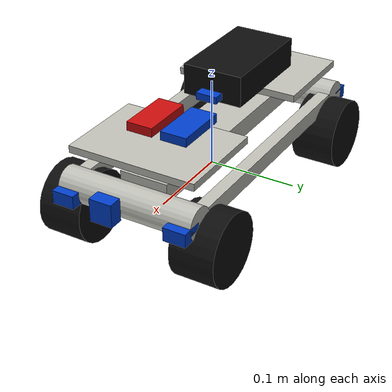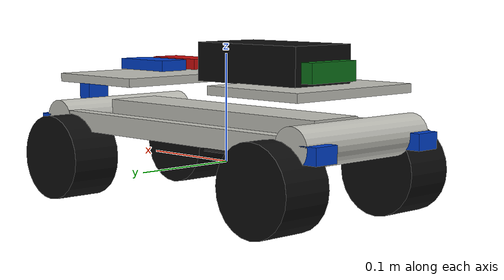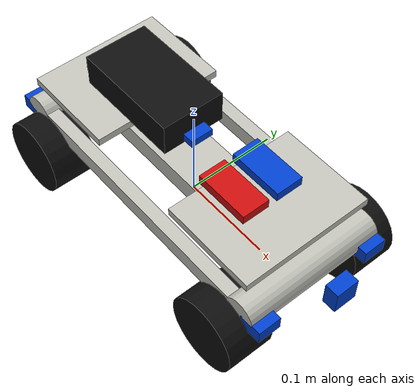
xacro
<?xml version="1.0"?>
<robot name="solarbot" xmlns:xacro="http://www.ros.org/wiki/xacro">

  <!-- ── 1. Common ─────────────────────────────────────────────── -->
  <xacro:include filename="$(find solarbot_description)/urdf/common/properties.xacro"/>
  <xacro:include filename="$(find solarbot_description)/urdf/common/materials.xacro"/>

  <!-- ── 2. Base ───────────────────────────────────────────────── -->
  <xacro:include filename="$(find solarbot_description)/urdf/base/chassis.xacro"/>
  <xacro:include filename="$(find solarbot_description)/urdf/base/wheels.xacro"/>

  <!-- ── 3. Sensors ────────────────────────────────────────────── -->
  <xacro:include filename="$(find solarbot_description)/urdf/sensors/sensors.xacro"/>

  <!-- ── 4. Electronics ────────────────────────────────────────── -->
  <xacro:include filename="$(find solarbot_description)/urdf/electronics/electronics.xacro"/>

  <!-- ── 5. ros2_control ───────────────────────────────────────── -->
  <xacro:include filename="$(find solarbot_description)/urdf/control/ros2_control.xacro"/>

  <!-- ── 6. Gazebo plugins + sensors ──────────────────────────── -->
  <xacro:include filename="$(find solarbot_description)/urdf/gazebo/gazebo.xacro"/>

</robot>

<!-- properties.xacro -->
<robot xmlns:xacro="http://www.ros.org/wiki/xacro">

  <!-- ── Chassis body ──────────────────────────────────────── -->
  <xacro:property name="chassis_rail_length"  value="0.270"/>
  <xacro:property name="chassis_rail_width"   value="0.055"/>
  <xacro:property name="chassis_rail_height"  value="0.022"/>

  <xacro:property name="plate_length"         value="0.105"/>
  <xacro:property name="plate_width"          value="0.145"/>
  <xacro:property name="plate_thickness"      value="0.008"/>
  <xacro:property name="plate_z"              value="0.034"/>

  <xacro:property name="side_rail_length"     value="0.295"/>
  <xacro:property name="side_rail_width"      value="0.014"/>
  <xacro:property name="side_rail_height"     value="0.018"/>
  <xacro:property name="side_rail_z"          value="-0.006"/>
  <xacro:property name="side_rail_y"          value="0.070"/>

  <!-- ── Track geometry ───────────────────────────────────── -->
  <xacro:property name="track_pod_length"     value="0.115"/>
  <xacro:property name="track_pod_width"      value="0.050"/>
  <xacro:property name="track_pod_height"     value="0.052"/>
  <xacro:property name="track_full_length"    value="0.393"/>
  <xacro:property name="track_front_x"        value="0.135"/>
  <xacro:property name="track_rear_x"         value="-0.135"/>
  <xacro:property name="track_y_offset"       value="0.078"/>
  <xacro:property name="track_z_offset"       value="-0.016"/>

  <!-- ── Virtual wheel (control) ──────────────────────────── -->
  <xacro:property name="wheel_radius"         value="0.040"/>
  <xacro:property name="wheel_width"          value="0.050"/>
  <xacro:property name="wheel_y_offset"       value="0.078"/>
  <xacro:property name="wheel_mass"           value="0.01"/>

  <!-- ── Motors ───────────────────────────────────────────── -->
  <xacro:property name="motor_radius"         value="0.018"/>
  <xacro:property name="motor_shaft_length"   value="0.155"/>
  <xacro:property name="motor_front_x"        value="0.155"/>
  <xacro:property name="motor_z"              value="-0.006"/>

  <!-- ── Base heights ─────────────────────────────────────── -->
  <xacro:property name="base_z_above_ground"  value="${wheel_radius}"/>

  <!-- ── Masses ────────────────────────────────────────────── -->
  <xacro:property name="chassis_mass"         value="2.20"/>
  <xacro:property name="track_pod_mass"       value="0.45"/>
  <xacro:property name="virtual_wheel_mass"   value="0.001"/>

  <!-- ELECTRONICS POSITIONS                                 -->
  <!-- All xyz relative to base_link origin.                 -->
  <!-- Adjust once physical mounting is measured.            -->

  <!-- Battery pack (LiFePO4, centre-rear for balance) -->
  <xacro:property name="battery_x"            value="-0.060"/>
  <xacro:property name="battery_y"            value="0.000"/>
  <xacro:property name="battery_z"            value="0.055"/>

  <!-- Raspberry Pi 5 (rear top plate) -->
  <xacro:property name="rpi_x"                value="-0.090"/>
  <xacro:property name="rpi_y"                value="0.000"/>
  <xacro:property name="rpi_z"                value="0.050"/>

  <!-- ESP32 motor controller (front area, near motor driver) -->
  <xacro:property name="esp32_x"              value="0.080"/>
  <xacro:property name="esp32_y"              value="0.020"/>
  <xacro:property name="esp32_z"              value="0.048"/>

  <!-- STM32 safety controller (front top plate) -->
  <xacro:property name="stm32_x"              value="0.080"/>
  <xacro:property name="stm32_y"              value="-0.020"/>
  <xacro:property name="stm32_z"              value="0.048"/>

  <!-- SENSOR POSITIONS                                      -->
  <!-- All xyz relative to base_link origin.                 -->

  <!-- IMU (GY-91 / MPU9250 — centred on chassis) -->
  <xacro:property name="imu_x"                value="0.000"/>
  <xacro:property name="imu_y"                value="0.000"/>
  <xacro:property name="imu_z"                value="0.045"/>

  <!-- Downward camera (OV9732 — centre of chassis, looking down at panel) -->
  <xacro:property name="camera_x"             value="0.000"/>
  <xacro:property name="camera_y"             value="0.000"/>
  <xacro:property name="camera_z"             value="-0.020"/>

  <!-- Front obstacle ToF (forward-facing, above front edge) -->
  <xacro:property name="front_tof_x"          value="0.200"/>
  <xacro:property name="front_tof_y"          value="0.000"/>
  <xacro:property name="front_tof_z"          value="0.010"/>

  <xacro:property name="front_left_tof_x"     value="0.170"/>
  <xacro:property name="front_left_tof_y"     value="0.065"/>
  <xacro:property name="front_left_tof_z"     value="-0.010"/>

  <xacro:property name="front_right_tof_x"    value="0.170"/>
  <xacro:property name="front_right_tof_y"    value="-0.065"/>
  <xacro:property name="front_right_tof_z"    value="-0.010"/>

  <xacro:property name="rear_left_tof_x"      value="-0.170"/>
  <xacro:property name="rear_left_tof_y"      value="0.065"/>
  <xacro:property name="rear_left_tof_z"      value="-0.010"/>

  <xacro:property name="rear_right_tof_x"     value="-0.170"/>
  <xacro:property name="rear_right_tof_y"     value="-0.065"/>
  <xacro:property name="rear_right_tof_z"     value="-0.010"/>

</robot>

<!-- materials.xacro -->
<robot xmlns:xacro="http://www.ros.org/wiki/xacro">

  <!--
    materials.xacro
    All colour definitions. Reference by name everywhere else.
  -->

  <material name="silver">
    <color rgba="0.75 0.75 0.72 1.0"/>
  </material>

  <material name="black">
    <color rgba="0.05 0.05 0.05 1.0"/>
  </material>

  <material name="dark_gray">
    <color rgba="0.15 0.15 0.15 1.0"/>
  </material>

  <!-- Sensor boards (IMU, ToF) -->
  <material name="blue">
    <color rgba="0.0 0.25 0.8 1.0"/>
  </material>

  <!-- Camera module -->
  <material name="camera_gray">
    <color rgba="0.20 0.20 0.20 1.0"/>
  </material>

  <!-- Raspberry Pi board -->
  <material name="green">
    <color rgba="0.05 0.45 0.10 1.0"/>
  </material>

  <!-- STM32 safety controller -->
  <material name="red">
    <color rgba="0.80 0.05 0.05 1.0"/>
  </material>

</robot>

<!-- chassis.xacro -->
<robot xmlns:xacro="http://www.ros.org/wiki/xacro">

  <xacro:macro name="box_inertia" params="m lx ly lz">
    <inertia
      ixx="${m*(ly*ly + lz*lz)/12.0}" ixy="0" ixz="0"
      iyy="${m*(lx*lx + lz*lz)/12.0}" iyz="0"
      izz="${m*(lx*lx + ly*ly)/12.0}"/>
  </xacro:macro>

  <!-- base_footprint — ground-plane projection, used by Nav2 -->
  <link name="base_footprint"/>

  <joint name="base_footprint_joint" type="fixed">
    <parent link="base_footprint"/>
    <child  link="base_link"/>
    <origin xyz="0 0 ${base_z_above_ground}" rpy="0 0 0"/>
  </joint>

  <!-- base_link — rigid chassis body -->
  <link name="base_link">

    <inertial>
      <origin xyz="0 0 0" rpy="0 0 0"/>
      <mass value="${chassis_mass}"/>
      <xacro:box_inertia
        m="${chassis_mass}"
        lx="${track_full_length}"
        ly="${motor_shaft_length}"
        lz="0.084"/>
    </inertial>

    <!-- Central spine rail -->
    <visual>
      <origin xyz="0 0 0" rpy="0 0 0"/>
      <geometry>
        <box size="${chassis_rail_length} ${chassis_rail_width} ${chassis_rail_height}"/>
      </geometry>
      <material name="silver"/>
    </visual>
    <collision>
      <origin xyz="0 0 0" rpy="0 0 0"/>
      <geometry>
        <box size="${chassis_rail_length} ${chassis_rail_width} ${chassis_rail_height}"/>
      </geometry>
    </collision>

    <!-- Front top plate -->
    <visual>
      <origin xyz="${plate_length} 0 ${plate_z}" rpy="0 0 0"/>
      <geometry>
        <box size="${plate_length} ${plate_width} ${plate_thickness}"/>
      </geometry>
      <material name="silver"/>
    </visual>
    <collision>
      <origin xyz="${plate_length} 0 ${plate_z}" rpy="0 0 0"/>
      <geometry>
        <box size="${plate_length} ${plate_width} ${plate_thickness}"/>
      </geometry>
    </collision>

    <!-- Rear top plate -->
    <visual>
      <origin xyz="${-plate_length} 0 ${plate_z}" rpy="0 0 0"/>
      <geometry>
        <box size="${plate_length} ${plate_width} ${plate_thickness}"/>
      </geometry>
      <material name="silver"/>
    </visual>
    <collision>
      <origin xyz="${-plate_length} 0 ${plate_z}" rpy="0 0 0"/>
      <geometry>
        <box size="${plate_length} ${plate_width} ${plate_thickness}"/>
      </geometry>
    </collision>

    <!-- Left side rail (visual only) -->
    <visual>
      <origin xyz="0 ${side_rail_y} ${side_rail_z}" rpy="0 0 0"/>
      <geometry>
        <box size="${side_rail_length} ${side_rail_width} ${side_rail_height}"/>
      </geometry>
      <material name="silver"/>
    </visual>

    <!-- Right side rail (visual only) -->
    <visual>
      <origin xyz="0 ${-side_rail_y} ${side_rail_z}" rpy="0 0 0"/>
      <geometry>
        <box size="${side_rail_length} ${side_rail_width} ${side_rail_height}"/>
      </geometry>
      <material name="silver"/>
    </visual>

    <!-- Front motor shaft (visual only) -->
    <visual>
      <origin xyz="${motor_front_x} 0 ${motor_z}" rpy="1.5708 0 0"/>
      <geometry>
        <cylinder radius="${motor_radius}" length="${motor_shaft_length}"/>
      </geometry>
      <material name="silver"/>
    </visual>

    <!-- Rear motor shaft (visual only) -->
    <visual>
      <origin xyz="${-motor_front_x} 0 ${motor_z}" rpy="1.5708 0 0"/>
      <geometry>
        <cylinder radius="${motor_radius}" length="${motor_shaft_length}"/>
      </geometry>
      <material name="silver"/>
    </visual>

  </link>

</robot>

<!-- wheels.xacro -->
<robot xmlns:xacro="http://www.ros.org/wiki/xacro">

<xacro:macro name="cylinder_inertia" params="m r h">
    <inertia
        ixx="${m*(3.0*r*r + h*h)/12.0}" ixy="0" ixz="0"
        iyy="${m*(3.0*r*r + h*h)/12.0}" iyz="0"
        izz="${m*r*r/2.0}"/>
</xacro:macro>

<!-- Wheel macro                                                -->
<xacro:macro name="wheel" params="name x y">

    <link name="${name}_wheel_link">

        <inertial>
            <origin xyz="0 0 0" rpy="0 0 0"/>
            <mass value="${wheel_mass}"/>
            <xacro:cylinder_inertia
                m="${wheel_mass}"
                r="${wheel_radius}"
                h="${wheel_width}"/>
        </inertial>

        <!-- Visual: rubber tyre cylinder -->
        <visual>
            <origin xyz="0 0 0" rpy="1.5708 0 0"/>
            <geometry>
                <cylinder radius="${wheel_radius}" length="${wheel_width}"/>
            </geometry>
            <material name="black"/>
        </visual>

        <!-- Collision: same cylinder geometry -->
        <collision>
            <origin xyz="0 0 0" rpy="1.5708 0 0"/>
            <geometry>
                <cylinder radius="${wheel_radius}" length="${wheel_width}"/>
            </geometry>
        </collision>

    </link>

    <joint name="${name}_wheel_joint" type="continuous">
        <parent link="base_link"/>
        <child  link="${name}_wheel_link"/>
        <origin xyz="${x} ${y} ${-wheel_radius}" rpy="0 0 0"/>
        <axis xyz="0 1 0"/>
        <dynamics damping="0.01" friction="0.1"/>
    </joint>

</xacro:macro>

<!-- Instantiate all four wheels                                -->

<xacro:wheel name="front_left"  x="0.135"  y="${wheel_y_offset}"/>
<xacro:wheel name="rear_left"   x="-0.135" y="${wheel_y_offset}"/>
<xacro:wheel name="front_right" x="0.135"  y="${-wheel_y_offset}"/>
<xacro:wheel name="rear_right"  x="-0.135" y="${-wheel_y_offset}"/>

</robot>

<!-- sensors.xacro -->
<robot xmlns:xacro="http://www.ros.org/wiki/xacro">

  <!-- ── ToF sensor macro ──────────────────────────────────── -->
  <xacro:macro name="tof_sensor" params="name x y z rpy">

    <link name="${name}_link">
      <visual>
        <geometry>
          <box size="0.025 0.025 0.015"/>
        </geometry>
        <material name="blue"/>
      </visual>
    </link>

    <joint name="${name}_joint" type="fixed">
      <parent link="base_link"/>
      <child  link="${name}_link"/>
      <origin xyz="${x} ${y} ${z}" rpy="${rpy}"/>
    </joint>

  </xacro:macro>

  <!-- ── IMU ───────────────────────────────────────────────── -->
  <link name="imu_link">
    <visual>
      <geometry>
        <box size="0.025 0.025 0.008"/>
      </geometry>
      <material name="blue"/>
    </visual>
  </link>

  <joint name="imu_joint" type="fixed">
    <parent link="base_link"/>
    <child  link="imu_link"/>
    <origin xyz="${imu_x} ${imu_y} ${imu_z}" rpy="0 0 0"/>
  </joint>

  <!-- ── Downward camera ───────────────────────────────────── -->
  <link name="downward_camera_link">
    <visual>
      <geometry>
        <box size="0.030 0.030 0.020"/>
      </geometry>
      <material name="dark_gray"/>
    </visual>
  </link>

  <joint name="downward_camera_joint" type="fixed">
    <parent link="base_link"/>
    <child  link="downward_camera_link"/>
    <origin xyz="${camera_x} ${camera_y} ${camera_z}" rpy="0 0 0"/>
  </joint>

  <link name="downward_camera_optical_frame"/>

  <joint name="downward_camera_optical_joint" type="fixed">
    <parent link="downward_camera_link"/>
    <child  link="downward_camera_optical_frame"/>
    <origin xyz="0 0 -0.020" rpy="-1.5708 0 -1.5708"/>
  </joint>

  <!-- ── Front obstacle ToF (forward-facing) ───────────────── -->
  <!--
    rpy="0 1.5708 0" tilts the sensor to face forward (+X direction).
    Detects obstacles ahead of the robot on the panel surface.
  -->
  <xacro:tof_sensor
    name="front_tof"
    x="${front_tof_x}"
    y="${front_tof_y}"
    z="${front_tof_z}"
    rpy="0 1.5708 0"/>

  <!-- ── Corner cliff ToF sensors (downward-facing) ────────── -->
  <xacro:tof_sensor
    name="front_left_tof"
    x="${front_left_tof_x}"
    y="${front_left_tof_y}"
    z="${front_left_tof_z}"
    rpy="0 0 0"/>

  <xacro:tof_sensor
    name="front_right_tof"
    x="${front_right_tof_x}"
    y="${front_right_tof_y}"
    z="${front_right_tof_z}"
    rpy="0 0 0"/>

  <xacro:tof_sensor
    name="rear_left_tof"
    x="${rear_left_tof_x}"
    y="${rear_left_tof_y}"
    z="${rear_left_tof_z}"
    rpy="0 0 0"/>

  <xacro:tof_sensor
    name="rear_right_tof"
    x="${rear_right_tof_x}"
    y="${rear_right_tof_y}"
    z="${rear_right_tof_z}"
    rpy="0 0 0"/>

</robot>

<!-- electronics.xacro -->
<robot xmlns:xacro="http://www.ros.org/wiki/xacro">

  <!-- ── Battery pack ──────────────────────────────────────── -->
  <link name="battery_link">
    <visual>
      <geometry>
        <box size="0.120 0.070 0.035"/>
      </geometry>
      <material name="black"/>
    </visual>
    <collision>
      <geometry>
        <box size="0.120 0.070 0.035"/>
      </geometry>
    </collision>
  </link>

  <joint name="battery_joint" type="fixed">
    <parent link="base_link"/>
    <child  link="battery_link"/>
    <origin xyz="${battery_x} ${battery_y} ${battery_z}" rpy="0 0 0"/>
  </joint>

  <!-- ── Raspberry Pi 5 ─────────────────────────────────────── -->
  <link name="raspberry_pi_link">
    <visual>
      <geometry>
        <box size="0.085 0.056 0.018"/>
      </geometry>
      <material name="green"/>
    </visual>
  </link>

  <joint name="raspberry_pi_joint" type="fixed">
    <parent link="base_link"/>
    <child  link="raspberry_pi_link"/>
    <origin xyz="${rpi_x} ${rpi_y} ${rpi_z}" rpy="0 0 0"/>
  </joint>

  <!-- ── ESP32 motor controller ─────────────────────────────── -->
  <link name="esp32_link">
    <visual>
      <geometry>
        <box size="0.060 0.030 0.010"/>
      </geometry>
      <material name="blue"/>
    </visual>
  </link>

  <joint name="esp32_joint" type="fixed">
    <parent link="base_link"/>
    <child  link="esp32_link"/>
    <origin xyz="${esp32_x} ${esp32_y} ${esp32_z}" rpy="0 0 0"/>
  </joint>

  <!-- ── STM32 safety controller ────────────────────────────── -->
  <link name="stm32_link">
    <visual>
      <geometry>
        <box size="0.060 0.030 0.010"/>
      </geometry>
      <material name="red"/>
    </visual>
  </link>

  <joint name="stm32_joint" type="fixed">
    <parent link="base_link"/>
    <child  link="stm32_link"/>
    <origin xyz="${stm32_x} ${stm32_y} ${stm32_z}" rpy="0 0 0"/>
  </joint>

</robot>
